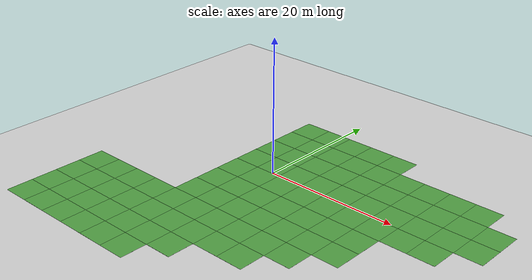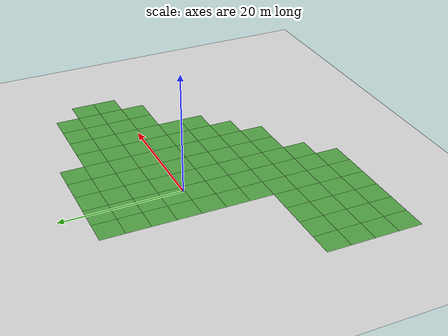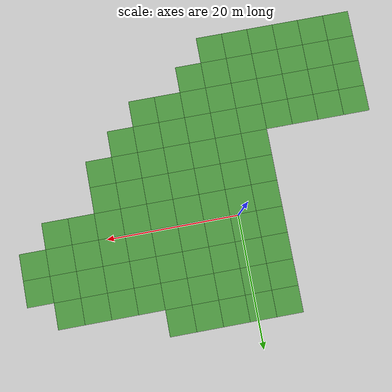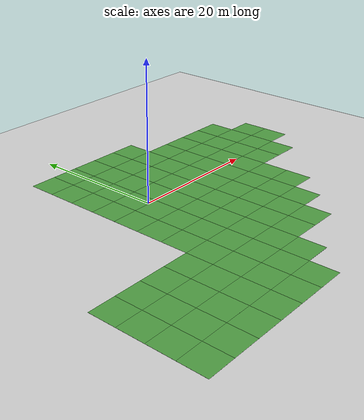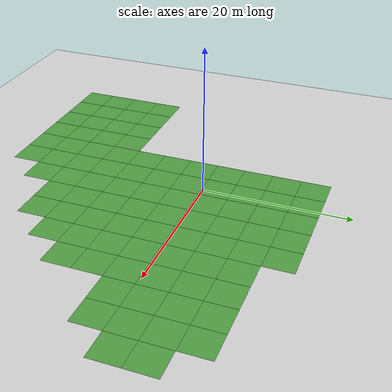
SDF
<sdf version="1.7">
 <world name="default">
  <model name="ground_plane">
   <static>1</static>
   <link name="link">
    <collision name="collision">
     <laser_retro>100</laser_retro>
     <geometry><plane><normal>0 0 1</normal><size>100 100</size></plane></geometry>
     <surface><friction><ode><mu>100</mu><mu2>50</mu2></ode></friction></surface>
    </collision>
    <visual name="visual">
     <laser_retro>100</laser_retro>
     <cast_shadows>0</cast_shadows>
     <geometry><plane><normal>0 0 1</normal><size>100 100</size></plane></geometry>
     <material>
      <script><uri>file://media/materials/scripts/gazebo.material</uri><name>Gazebo/Grey</name></script>
     </material>
    </visual>
   </link>
  </model>
  <model name="grass_plane">
   <static>1</static>
   <link name="link">
    <collision name="collision">
     <geometry><plane><normal>0 0 1</normal><size>100 100</size></plane></geometry>
     <surface><friction><ode><mu>0.5</mu><mu2>0.5</mu2></ode></friction></surface>
    </collision>
    <visual name="visual_0">
     <pose>-8 -8 0 0 -0 0</pose>
     <cast_shadows>0</cast_shadows>
     <geometry><plane><normal>0 0 1</normal><size>4 4</size></plane></geometry>
     <material>
      <script>
       <uri>model://grass_plane/materials/scripts</uri>
       <uri>model://grass_plane/materials/textures</uri>
       <name>vrc/grass</name>
      </script>
     </material>
    </visual>
    <visual name="visual_1">
     <pose>-4 -8 0 0 -0 0</pose>
     <cast_shadows>0</cast_shadows>
     <geometry><plane><normal>0 0 1</normal><size>4 4</size></plane></geometry>
     <material>
      <script>
       <uri>model://grass_plane/materials/scripts</uri>
       <uri>model://grass_plane/materials/textures</uri>
       <name>vrc/grass</name>
      </script>
     </material>
    </visual>
    <visual name="visual_2">
     <pose>0 -8 0 0 -0 0</pose>
     <cast_shadows>0</cast_shadows>
     <geometry><plane><normal>0 0 1</normal><size>4 4</size></plane></geometry>
     <material>
      <script>
       <uri>model://grass_plane/materials/scripts</uri>
       <uri>model://grass_plane/materials/textures</uri>
       <name>vrc/grass</name>
      </script>
     </material>
    </visual>
    <visual name="visual_3">
     <pose>4 -8 0 0 -0 0</pose>
     <cast_shadows>0</cast_shadows>
     <geometry><plane><normal>0 0 1</normal><size>4 4</size></plane></geometry>
     <material>
      <script>
       <uri>model://grass_plane/materials/scripts</uri>
       <uri>model://grass_plane/materials/textures</uri>
       <name>vrc/grass</name>
      </script>
     </material>
    </visual>
    <visual name="visual_4">
     <pose>8 -8 0 0 -0 0</pose>
     <cast_shadows>0</cast_shadows>
     <geometry><plane><normal>0 0 1</normal><size>4 4</size></plane></geometry>
     <material>
      <script>
       <uri>model://grass_plane/materials/scripts</uri>
       <uri>model://grass_plane/materials/textures</uri>
       <name>vrc/grass</name>
      </script>
     </material>
    </visual>
    <visual name="visual_5">
     <pose>12 -8 0 0 -0 0</pose>
     <cast_shadows>0</cast_shadows>
     <geometry><plane><normal>0 0 1</normal><size>4 4</size></plane></geometry>
     <material>
      <script>
       <uri>model://grass_plane/materials/scripts</uri>
       <uri>model://grass_plane/materials/textures</uri>
       <name>vrc/grass</name>
      </script>
     </material>
    </visual>
    <visual name="visual_6">
     <pose>-8 -4 0 0 -0 0</pose>
     <cast_shadows>0</cast_shadows>
     <geometry><plane><normal>0 0 1</normal><size>4 4</size></plane></geometry>
     <material>
      <script>
       <uri>model://grass_plane/materials/scripts</uri>
       <uri>model://grass_plane/materials/textures</uri>
       <name>vrc/grass</name>
      </script>
     </material>
    </visual>
    <visual name="visual_7">
     <pose>-4 -4 0 0 -0 0</pose>
     <cast_shadows>0</cast_shadows>
     <geometry><plane><normal>0 0 1</normal><size>4 4</size></plane></geometry>
     <material>
      <script>
       <uri>model://grass_plane/materials/scripts</uri>
       <uri>model://grass_plane/materials/textures</uri>
       <name>vrc/grass</name>
      </script>
     </material>
    </visual>
    <visual name="visual_8">
     <pose>0 -4 0 0 -0 0</pose>
     <cast_shadows>0</cast_shadows>
     <geometry><plane><normal>0 0 1</normal><size>4 4</size></plane></geometry>
     <material>
      <script>
       <uri>model://grass_plane/materials/scripts</uri>
       <uri>model://grass_plane/materials/textures</uri>
       <name>vrc/grass</name>
      </script>
     </material>
    </visual>
    <visual name="visual_9">
     <pose>4 -4 0 0 -0 0</pose>
     <cast_shadows>0</cast_shadows>
     <geometry><plane><normal>0 0 1</normal><size>4 4</size></plane></geometry>
     <material>
      <script>
       <uri>model://grass_plane/materials/scripts</uri>
       <uri>model://grass_plane/materials/textures</uri>
       <name>vrc/grass</name>
      </script>
     </material>
    </visual>
    <visual name="visual_10">
     <pose>8 -4 0 0 -0 0</pose>
     <cast_shadows>0</cast_shadows>
     <geometry><plane><normal>0 0 1</normal><size>4 4</size></plane></geometry>
     <material>
      <script>
       <uri>model://grass_plane/materials/scripts</uri>
       <uri>model://grass_plane/materials/textures</uri>
       <name>vrc/grass</name>
      </script>
     </material>
    </visual>
    <visual name="visual_11">
     <pose>12 -4 0 0 -0 0</pose>
     <cast_shadows>0</cast_shadows>
     <geometry><plane><normal>0 0 1</normal><size>4 4</size></plane></geometry>
     <material>
      <script>
       <uri>model://grass_plane/materials/scripts</uri>
       <uri>model://grass_plane/materials/textures</uri>
       <name>vrc/grass</name>
      </script>
     </material>
    </visual>
    <visual name="visual_12">
     <pose>16 -4 0 0 -0 0</pose>
     <cast_shadows>0</cast_shadows>
     <geometry><plane><normal>0 0 1</normal><size>4 4</size></plane></geometry>
     <material>
      <script>
       <uri>model://grass_plane/materials/scripts</uri>
       <uri>model://grass_plane/materials/textures</uri>
       <name>vrc/grass</name>
      </script>
     </material>
    </visual>
    <visual name="visual_13">
     <pose>-8 0 0 0 -0 0</pose>
     <cast_shadows>0</cast_shadows>
     <geometry><plane><normal>0 0 1</normal><size>4 4</size></plane></geometry>
     <material>
      <script>
       <uri>model://grass_plane/materials/scripts</uri>
       <uri>model://grass_plane/materials/textures</uri>
       <name>vrc/grass</name>
      </script>
     </material>
    </visual>
    <visual name="visual_14">
     <pose>-4 0 0 0 -0 0</pose>
     <cast_shadows>0</cast_shadows>
     <geometry><plane><normal>0 0 1</normal><size>4 4</size></plane></geometry>
     <material>
      <script>
       <uri>model://grass_plane/materials/scripts</uri>
       <uri>model://grass_plane/materials/textures</uri>
       <name>vrc/grass</name>
      </script>
     </material>
    </visual>
    <visual name="visual_15">
     <cast_shadows>0</cast_shadows>
     <geometry><plane><normal>0 0 1</normal><size>4 4</size></plane></geometry>
     <material>
      <script>
       <uri>model://grass_plane/materials/scripts</uri>
       <uri>model://grass_plane/materials/textures</uri>
       <name>vrc/grass</name>
      </script>
     </material>
    </visual>
    <visual name="visual_16">
     <pose>4 0 0 0 -0 0</pose>
     <cast_shadows>0</cast_shadows>
     <geometry><plane><normal>0 0 1</normal><size>4 4</size></plane></geometry>
     <material>
      <script>
       <uri>model://grass_plane/materials/scripts</uri>
       <uri>model://grass_plane/materials/textures</uri>
       <name>vrc/grass</name>
      </script>
     </material>
    </visual>
    <visual name="visual_17">
     <pose>8 0 0 0 -0 0</pose>
     <cast_shadows>0</cast_shadows>
     <geometry><plane><normal>0 0 1</normal><size>4 4</size></plane></geometry>
     <material>
      <script>
       <uri>model://grass_plane/materials/scripts</uri>
       <uri>model://grass_plane/materials/textures</uri>
       <name>vrc/grass</name>
      </script>
     </material>
    </visual>
    <visual name="visual_18">
     <pose>12 0 0 0 -0 0</pose>
     <cast_shadows>0</cast_shadows>
     <geometry><plane><normal>0 0 1</normal><size>4 4</size></plane></geometry>
     <material>
      <script>
       <uri>model://grass_plane/materials/scripts</uri>
       <uri>model://grass_plane/materials/textures</uri>
       <name>vrc/grass</name>
      </script>
     </material>
    </visual>
    <visual name="visual_19">
     <pose>16 0 0 0 -0 0</pose>
     <cast_shadows>0</cast_shadows>
     <geometry><plane><normal>0 0 1</normal><size>4 4</size></plane></geometry>
     <material>
      <script>
       <uri>model://grass_plane/materials/scripts</uri>
       <uri>model://grass_plane/materials/textures</uri>
       <name>vrc/grass</name>
      </script>
     </material>
    </visual>
    <visual name="visual_20">
     <pose>20 0 0 0 -0 0</pose>
     <cast_shadows>0</cast_shadows>
     <geometry><plane><normal>0 0 1</normal><size>4 4</size></plane></geometry>
     <material>
      <script>
       <uri>model://grass_plane/materials/scripts</uri>
       <uri>model://grass_plane/materials/textures</uri>
       <name>vrc/grass</name>
      </script>
     </material>
    </visual>
    <visual name="visual_21">
     <pose>24 0 0 0 -0 0</pose>
     <cast_shadows>0</cast_shadows>
     <geometry><plane><normal>0 0 1</normal><size>4 4</size></plane></geometry>
     <material>
      <script>
       <uri>model://grass_plane/materials/scripts</uri>
       <uri>model://grass_plane/materials/textures</uri>
       <name>vrc/grass</name>
      </script>
     </material>
    </visual>
    <visual name="visual_22">
     <pose>-8 4 0 0 -0 0</pose>
     <cast_shadows>0</cast_shadows>
     <geometry><plane><normal>0 0 1</normal><size>4 4</size></plane></geometry>
     <material>
      <script>
       <uri>model://grass_plane/materials/scripts</uri>
       <uri>model://grass_plane/materials/textures</uri>
       <name>vrc/grass</name>
      </script>
     </material>
    </visual>
    <visual name="visual_23">
     <pose>-4 4 0 0 -0 0</pose>
     <cast_shadows>0</cast_shadows>
     <geometry><plane><normal>0 0 1</normal><size>4 4</size></plane></geometry>
     <material>
      <script>
       <uri>model://grass_plane/materials/scripts</uri>
       <uri>model://grass_plane/materials/textures</uri>
       <name>vrc/grass</name>
      </script>
     </material>
    </visual>
    <visual name="visual_24">
     <pose>0 4 0 0 -0 0</pose>
     <cast_shadows>0</cast_shadows>
     <geometry><plane><normal>0 0 1</normal><size>4 4</size></plane></geometry>
     <material>
      <script>
       <uri>model://grass_plane/materials/scripts</uri>
       <uri>model://grass_plane/materials/textures</uri>
       <name>vrc/grass</name>
      </script>
     </material>
    </visual>
    <visual name="visual_25">
     <pose>4 4 0 0 -0 0</pose>
     <cast_shadows>0</cast_shadows>
     <geometry><plane><normal>0 0 1</normal><size>4 4</size></plane></geometry>
     <material>
      <script>
       <uri>model://grass_plane/materials/scripts</uri>
       <uri>model://grass_plane/materials/textures</uri>
       <name>vrc/grass</name>
      </script>
     </material>
    </visual>
    <visual name="visual_26">
     <pose>8 4 0 0 -0 0</pose>
     <cast_shadows>0</cast_shadows>
     <geometry><plane><normal>0 0 1</normal><size>4 4</size></plane></geometry>
     <material>
      <script>
       <uri>model://grass_plane/materials/scripts</uri>
       <uri>model://grass_plane/materials/textures</uri>
       <name>vrc/grass</name>
      </script>
     </material>
    </visual>
    <visual name="visual_27">
     <pose>12 4 0 0 -0 0</pose>
     <cast_shadows>0</cast_shadows>
     <geometry><plane><normal>0 0 1</normal><size>4 4</size></plane></geometry>
     <material>
      <script>
       <uri>model://grass_plane/materials/scripts</uri>
       <uri>model://grass_plane/materials/textures</uri>
       <name>vrc/grass</name>
      </script>
     </material>
    </visual>
    <visual name="visual_28">
     <pose>16 4 0 0 -0 0</pose>
     <cast_shadows>0</cast_shadows>
     <geometry><plane><normal>0 0 1</normal><size>4 4</size></plane></geometry>
     <material>
      <script>
       <uri>model://grass_plane/materials/scripts</uri>
       <uri>model://grass_plane/materials/textures</uri>
       <name>vrc/grass</name>
      </script>
     </material>
    </visual>
    <visual name="visual_29">
     <pose>20 4 0 0 -0 0</pose>
     <cast_shadows>0</cast_shadows>
     <geometry><plane><normal>0 0 1</normal><size>4 4</size></plane></geometry>
     <material>
      <script>
       <uri>model://grass_plane/materials/scripts</uri>
       <uri>model://grass_plane/materials/textures</uri>
       <name>vrc/grass</name>
      </script>
     </material>
    </visual>
    <visual name="visual_30">
     <pose>24 4 0 0 -0 0</pose>
     <cast_shadows>0</cast_shadows>
     <geometry><plane><normal>0 0 1</normal><size>4 4</size></plane></geometry>
     <material>
      <script>
       <uri>model://grass_plane/materials/scripts</uri>
       <uri>model://grass_plane/materials/textures</uri>
       <name>vrc/grass</name>
      </script>
     </material>
    </visual>
    <visual name="visual_31">
     <pose>28 4 0 0 -0 0</pose>
     <cast_shadows>0</cast_shadows>
     <geometry><plane><normal>0 0 1</normal><size>4 4</size></plane></geometry>
     <material>
      <script>
       <uri>model://grass_plane/materials/scripts</uri>
       <uri>model://grass_plane/materials/textures</uri>
       <name>vrc/grass</name>
      </script>
     </material>
    </visual>
    <visual name="visual_32">
     <pose>8 8 0 0 -0 0</pose>
     <cast_shadows>0</cast_shadows>
     <geometry><plane><normal>0 0 1</normal><size>4 4</size></plane></geometry>
     <material>
      <script>
       <uri>model://grass_plane/materials/scripts</uri>
       <uri>model://grass_plane/materials/textures</uri>
       <name>vrc/grass</name>
      </script>
     </material>
    </visual>
    <visual name="visual_33">
     <pose>12 8 0 0 -0 0</pose>
     <cast_shadows>0</cast_shadows>
     <geometry><plane><normal>0 0 1</normal><size>4 4</size></plane></geometry>
     <material>
      <script>
       <uri>model://grass_plane/materials/scripts</uri>
       <uri>model://grass_plane/materials/textures</uri>
       <name>vrc/grass</name>
      </script>
     </material>
    </visual>
    <visual name="visual_34">
     <pose>16 8 0 0 -0 0</pose>
     <cast_shadows>0</cast_shadows>
     <geometry><plane><normal>0 0 1</normal><size>4 4</size></plane></geometry>
     <material>
      <script>
       <uri>model://grass_plane/materials/scripts</uri>
       <uri>model://grass_plane/materials/textures</uri>
       <name>vrc/grass</name>
      </script>
     </material>
    </visual>
    <visual name="visual_35">
     <pose>20 8 0 0 -0 0</pose>
     <cast_shadows>0</cast_shadows>
     <geometry><plane><normal>0 0 1</normal><size>4 4</size></plane></geometry>
     <material>
      <script>
       <uri>model://grass_plane/materials/scripts</uri>
       <uri>model://grass_plane/materials/textures</uri>
       <name>vrc/grass</name>
      </script>
     </material>
    </visual>
    <visual name="visual_36">
     <pose>24 8 0 0 -0 0</pose>
     <cast_shadows>0</cast_shadows>
     <geometry><plane><normal>0 0 1</normal><size>4 4</size></plane></geometry>
     <material>
      <script>
       <uri>model://grass_plane/materials/scripts</uri>
       <uri>model://grass_plane/materials/textures</uri>
       <name>vrc/grass</name>
      </script>
     </material>
    </visual>
    <visual name="visual_37">
     <pose>28 8 0 0 -0 0</pose>
     <cast_shadows>0</cast_shadows>
     <geometry><plane><normal>0 0 1</normal><size>4 4</size></plane></geometry>
     <material>
      <script>
       <uri>model://grass_plane/materials/scripts</uri>
       <uri>model://grass_plane/materials/textures</uri>
       <name>vrc/grass</name>
      </script>
     </material>
    </visual>
    <visual name="visual_38">
     <pose>32 8 0 0 -0 0</pose>
     <cast_shadows>0</cast_shadows>
     <geometry><plane><normal>0 0 1</normal><size>4 4</size></plane></geometry>
     <material>
      <script>
       <uri>model://grass_plane/materials/scripts</uri>
       <uri>model://grass_plane/materials/textures</uri>
       <name>vrc/grass</name>
      </script>
     </material>
    </visual>
    <visual name="visual_39">
     <pose>8 12 0 0 -0 0</pose>
     <cast_shadows>0</cast_shadows>
     <geometry><plane><normal>0 0 1</normal><size>4 4</size></plane></geometry>
     <material>
      <script>
       <uri>model://grass_plane/materials/scripts</uri>
       <uri>model://grass_plane/materials/textures</uri>
       <name>vrc/grass</name>
      </script>
     </material>
    </visual>
    <visual name="visual_40">
     <pose>12 12 0 0 -0 0</pose>
     <cast_shadows>0</cast_shadows>
     <geometry><plane><normal>0 0 1</normal><size>4 4</size></plane></geometry>
     <material>
      <script>
       <uri>model://grass_plane/materials/scripts</uri>
       <uri>model://grass_plane/materials/textures</uri>
       <name>vrc/grass</name>
      </script>
     </material>
    </visual>
    <visual name="visual_41">
     <pose>16 12 0 0 -0 0</pose>
     <cast_shadows>0</cast_shadows>
     <geometry><plane><normal>0 0 1</normal><size>4 4</size></plane></geometry>
     <material>
      <script>
       <uri>model://grass_plane/materials/scripts</uri>
       <uri>model://grass_plane/materials/textures</uri>
       <name>vrc/grass</name>
      </script>
     </material>
    </visual>
    <visual name="visual_42">
     <pose>20 12 0 0 -0 0</pose>
     <cast_shadows>0</cast_shadows>
     <geometry><plane><normal>0 0 1</normal><size>4 4</size></plane></geometry>
     <material>
      <script>
       <uri>model://grass_plane/materials/scripts</uri>
       <uri>model://grass_plane/materials/textures</uri>
       <name>vrc/grass</name>
      </script>
     </material>
    </visual>
    <visual name="visual_43">
     <pose>24 12 0 0 -0 0</pose>
     <cast_shadows>0</cast_shadows>
     <geometry><plane><normal>0 0 1</normal><size>4 4</size></plane></geometry>
     <material>
      <script>
       <uri>model://grass_plane/materials/scripts</uri>
       <uri>model://grass_plane/materials/textures</uri>
       <name>vrc/grass</name>
      </script>
     </material>
    </visual>
    <visual name="visual_44">
     <pose>28 12 0 0 -0 0</pose>
     <cast_shadows>0</cast_shadows>
     <geometry><plane><normal>0 0 1</normal><size>4 4</size></plane></geometry>
     <material>
      <script>
       <uri>model://grass_plane/materials/scripts</uri>
       <uri>model://grass_plane/materials/textures</uri>
       <name>vrc/grass</name>
      </script>
     </material>
    </visual>
    <visual name="visual_45">
     <pose>32 12 0 0 -0 0</pose>
     <cast_shadows>0</cast_shadows>
     <geometry><plane><normal>0 0 1</normal><size>4 4</size></plane></geometry>
     <material>
      <script>
       <uri>model://grass_plane/materials/scripts</uri>
       <uri>model://grass_plane/materials/textures</uri>
       <name>vrc/grass</name>
      </script>
     </material>
    </visual>
    <visual name="visual_46">
     <pose>8 16 0 0 -0 0</pose>
     <cast_shadows>0</cast_shadows>
     <geometry><plane><normal>0 0 1</normal><size>4 4</size></plane></geometry>
     <material>
      <script>
       <uri>model://grass_plane/materials/scripts</uri>
       <uri>model://grass_plane/materials/textures</uri>
       <name>vrc/grass</name>
      </script>
     </material>
    </visual>
    <visual name="visual_47">
     <pose>12 16 0 0 -0 0</pose>
     <cast_shadows>0</cast_shadows>
     <geometry><plane><normal>0 0 1</normal><size>4 4</size></plane></geometry>
     <material>
      <script>
       <uri>model://grass_plane/materials/scripts</uri>
       <uri>model://grass_plane/materials/textures</uri>
       <name>vrc/grass</name>
      </script>
     </material>
    </visual>
    <visual name="visual_48">
     <pose>16 16 0 0 -0 0</pose>
     <cast_shadows>0</cast_shadows>
     <geometry><plane><normal>0 0 1</normal><size>4 4</size></plane></geometry>
     <material>
      <script>
       <uri>model://grass_plane/materials/scripts</uri>
       <uri>model://grass_plane/materials/textures</uri>
       <name>vrc/grass</name>
      </script>
     </material>
    </visual>
    <visual name="visual_49">
     <pose>20 16 0 0 -0 0</pose>
     <cast_shadows>0</cast_shadows>
     <geometry><plane><normal>0 0 1</normal><size>4 4</size></plane></geometry>
     <material>
      <script>
       <uri>model://grass_plane/materials/scripts</uri>
       <uri>model://grass_plane/materials/textures</uri>
       <name>vrc/grass</name>
      </script>
     </material>
    </visual>
    <visual name="visual_50">
     <pose>24 16 0 0 -0 0</pose>
     <cast_shadows>0</cast_shadows>
     <geometry><plane><normal>0 0 1</normal><size>4 4</size></plane></geometry>
     <material>
      <script>
       <uri>model://grass_plane/materials/scripts</uri>
       <uri>model://grass_plane/materials/textures</uri>
       <name>vrc/grass</name>
      </script>
     </material>
    </visual>
    <visual name="visual_51">
     <pose>28 16 0 0 -0 0</pose>
     <cast_shadows>0</cast_shadows>
     <geometry><plane><normal>0 0 1</normal><size>4 4</size></plane></geometry>
     <material>
      <script>
       <uri>model://grass_plane/materials/scripts</uri>
       <uri>model://grass_plane/materials/textures</uri>
       <name>vrc/grass</name>
      </script>
     </material>
    </visual>
    <visual name="visual_52">
     <pose>32 16 0 0 -0 0</pose>
     <cast_shadows>0</cast_shadows>
     <geometry><plane><normal>0 0 1</normal><size>4 4</size></plane></geometry>
     <material>
      <script>
       <uri>model://grass_plane/materials/scripts</uri>
       <uri>model://grass_plane/materials/textures</uri>
       <name>vrc/grass</name>
      </script>
     </material>
    </visual>
    <visual name="visual_53">
     <pose>36 16 0 0 -0 0</pose>
     <cast_shadows>0</cast_shadows>
     <geometry><plane><normal>0 0 1</normal><size>4 4</size></plane></geometry>
     <material>
      <script>
       <uri>model://grass_plane/materials/scripts</uri>
       <uri>model://grass_plane/materials/textures</uri>
       <name>vrc/grass</name>
      </script>
     </material>
    </visual>
    <visual name="visual_54">
     <pose>40 16 0 0 -0 0</pose>
     <cast_shadows>0</cast_shadows>
     <geometry><plane><normal>0 0 1</normal><size>4 4</size></plane></geometry>
     <material>
      <script>
       <uri>model://grass_plane/materials/scripts</uri>
       <uri>model://grass_plane/materials/textures</uri>
       <name>vrc/grass</name>
      </script>
     </material>
    </visual>
    <visual name="visual_55">
     <pose>8 20 0 0 -0 0</pose>
     <cast_shadows>0</cast_shadows>
     <geometry><plane><normal>0 0 1</normal><size>4 4</size></plane></geometry>
     <material>
      <script>
       <uri>model://grass_plane/materials/scripts</uri>
       <uri>model://grass_plane/materials/textures</uri>
       <name>vrc/grass</name>
      </script>
     </material>
    </visual>
    <visual name="visual_56">
     <pose>12 20 0 0 -0 0</pose>
     <cast_shadows>0</cast_shadows>
     <geometry><plane><normal>0 0 1</normal><size>4 4</size></plane></geometry>
     <material>
      <script>
       <uri>model://grass_plane/materials/scripts</uri>
       <uri>model://grass_plane/materials/textures</uri>
       <name>vrc/grass</name>
      </script>
     </material>
    </visual>
    <visual name="visual_57">
     <pose>16 20 0 0 -0 0</pose>
     <cast_shadows>0</cast_shadows>
     <geometry><plane><normal>0 0 1</normal><size>4 4</size></plane></geometry>
     <material>
      <script>
       <uri>model://grass_plane/materials/scripts</uri>
       <uri>model://grass_plane/materials/textures</uri>
       <name>vrc/grass</name>
      </script>
     </material>
    </visual>
    <visual name="visual_58">
     <pose>20 20 0 0 -0 0</pose>
     <cast_shadows>0</cast_shadows>
     <geometry><plane><normal>0 0 1</normal><size>4 4</size></plane></geometry>
     <material>
      <script>
       <uri>model://grass_plane/materials/scripts</uri>
       <uri>model://grass_plane/materials/textures</uri>
       <name>vrc/grass</name>
      </script>
     </material>
    </visual>
    <visual name="visual_59">
     <pose>24 20 0 0 -0 0</pose>
     <cast_shadows>0</cast_shadows>
     <geometry><plane><normal>0 0 1</normal><size>4 4</size></plane></geometry>
     <material>
      <script>
       <uri>model://grass_plane/materials/scripts</uri>
       <uri>model://grass_plane/materials/textures</uri>
       <name>vrc/grass</name>
      </script>
     </material>
    </visual>
    <visual name="visual_60">
     <pose>28 20 0 0 -0 0</pose>
     <cast_shadows>0</cast_shadows>
     <geometry><plane><normal>0 0 1</normal><size>4 4</size></plane></geometry>
     <material>
      <script>
       <uri>model://grass_plane/materials/scripts</uri>
       <uri>model://grass_plane/materials/textures</uri>
       <name>vrc/grass</name>
      </script>
     </material>
    </visual>
    <visual name="visual_61">
     <pose>32 20 0 0 -0 0</pose>
     <cast_shadows>0</cast_shadows>
     <geometry><plane><normal>0 0 1</normal><size>4 4</size></plane></geometry>
     <material>
      <script>
       <uri>model://grass_plane/materials/scripts</uri>
       <uri>model://grass_plane/materials/textures</uri>
       <name>vrc/grass</name>
      </script>
     </material>
    </visual>
    <visual name="visual_62">
     <pose>36 20 0 0 -0 0</pose>
     <cast_shadows>0</cast_shadows>
     <geometry><plane><normal>0 0 1</normal><size>4 4</size></plane></geometry>
     <material>
      <script>
       <uri>model://grass_plane/materials/scripts</uri>
       <uri>model://grass_plane/materials/textures</uri>
       <name>vrc/grass</name>
      </script>
     </material>
    </visual>
    <visual name="visual_63">
     <pose>40 20 0 0 -0 0</pose>
     <cast_shadows>0</cast_shadows>
     <geometry><plane><normal>0 0 1</normal><size>4 4</size></plane></geometry>
     <material>
      <script>
       <uri>model://grass_plane/materials/scripts</uri>
       <uri>model://grass_plane/materials/textures</uri>
       <name>vrc/grass</name>
      </script>
     </material>
    </visual>
    <visual name="visual_63a">
     <pose>44 20 0 0 -0 0</pose>
     <cast_shadows>0</cast_shadows>
     <geometry><plane><normal>0 0 1</normal><size>4 4</size></plane></geometry>
     <material>
      <script>
       <uri>model://grass_plane/materials/scripts</uri>
       <uri>model://grass_plane/materials/textures</uri>
       <name>vrc/grass</name>
      </script>
     </material>
    </visual>
    <visual name="visual_64">
     <pose>8 24 0 0 -0 0</pose>
     <cast_shadows>0</cast_shadows>
     <geometry><plane><normal>0 0 1</normal><size>4 4</size></plane></geometry>
     <material>
      <script>
       <uri>model://grass_plane/materials/scripts</uri>
       <uri>model://grass_plane/materials/textures</uri>
       <name>vrc/grass</name>
      </script>
     </material>
    </visual>
    <visual name="visual_65">
     <pose>12 24 0 0 -0 0</pose>
     <cast_shadows>0</cast_shadows>
     <geometry><plane><normal>0 0 1</normal><size>4 4</size></plane></geometry>
     <material>
      <script>
       <uri>model://grass_plane/materials/scripts</uri>
       <uri>model://grass_plane/materials/textures</uri>
       <name>vrc/grass</name>
      </script>
     </material>
    </visual>
    <visual name="visual_66">
     <pose>16 24 0 0 -0 0</pose>
     <cast_shadows>0</cast_shadows>
     <geometry><plane><normal>0 0 1</normal><size>4 4</size></plane></geometry>
     <material>
      <script>
       <uri>model://grass_plane/materials/scripts</uri>
       <uri>model://grass_plane/materials/textures</uri>
       <name>vrc/grass</name>
      </script>
     </material>
    </visual>
    <visual name="visual_67">
     <pose>20 24 0 0 -0 0</pose>
     <cast_shadows>0</cast_shadows>
     <geometry><plane><normal>0 0 1</normal><size>4 4</size></plane></geometry>
     <material>
      <script>
       <uri>model://grass_plane/materials/scripts</uri>
       <uri>model://grass_plane/materials/textures</uri>
       <name>vrc/grass</name>
      </script>
     </material>
    </visual>
    <visual name="visual_68">
     <pose>24 24 0 0 -0 0</pose>
     <cast_shadows>0</cast_shadows>
     <geometry><plane><normal>0 0 1</normal><size>4 4</size></plane></geometry>
     <material>
      <script>
       <uri>model://grass_plane/materials/scripts</uri>
       <uri>model://grass_plane/materials/textures</uri>
       <name>vrc/grass</name>
      </script>
     </material>
    </visual>
    <visual name="visual_69">
     <pose>28 24 0 0 -0 0</pose>
     <cast_shadows>0</cast_shadows>
     <geometry><plane><normal>0 0 1</normal><size>4 4</size></plane></geometry>
     <material>
      <script>
       <uri>model://grass_plane/materials/scripts</uri>
       <uri>model://grass_plane/materials/textures</uri>
       <name>vrc/grass</name>
      </script>
     </material>
    </visual>
    <visual name="visual_70">
     <pose>32 24 0 0 -0 0</pose>
     <cast_shadows>0</cast_shadows>
     <geometry><plane><normal>0 0 1</normal><size>4 4</size></plane></geometry>
     <material>
      <script>
       <uri>model://grass_plane/materials/scripts</uri>
       <uri>model://grass_plane/materials/textures</uri>
       <name>vrc/grass</name>
      </script>
     </material>
    </visual>
    <visual name="visual_71">
     <pose>36 24 0 0 -0 0</pose>
     <cast_shadows>0</cast_shadows>
     <geometry><plane><normal>0 0 1</normal><size>4 4</size></plane></geometry>
     <material>
      <script>
       <uri>model://grass_plane/materials/scripts</uri>
       <uri>model://grass_plane/materials/textures</uri>
       <name>vrc/grass</name>
      </script>
     </material>
    </visual>
    <visual name="visual_72">
     <pose>40 24 0 0 -0 0</pose>
     <cast_shadows>0</cast_shadows>
     <geometry><plane><normal>0 0 1</normal><size>4 4</size></plane></geometry>
     <material>
      <script>
       <uri>model://grass_plane/materials/scripts</uri>
       <uri>model://grass_plane/materials/textures</uri>
       <name>vrc/grass</name>
      </script>
     </material>
    </visual>
    <visual name="visual_72a">
     <pose>44 24 0 0 -0 0</pose>
     <cast_shadows>0</cast_shadows>
     <geometry><plane><normal>0 0 1</normal><size>4 4</size></plane></geometry>
     <material>
      <script>
       <uri>model://grass_plane/materials/scripts</uri>
       <uri>model://grass_plane/materials/textures</uri>
       <name>vrc/grass</name>
      </script>
     </material>
    </visual>
    <visual name="visual_73">
     <pose>8 28 0 0 -0 0</pose>
     <cast_shadows>0</cast_shadows>
     <geometry><plane><normal>0 0 1</normal><size>4 4</size></plane></geometry>
     <material>
      <script>
       <uri>model://grass_plane/materials/scripts</uri>
       <uri>model://grass_plane/materials/textures</uri>
       <name>vrc/grass</name>
      </script>
     </material>
    </visual>
    <visual name="visual_74">
     <pose>12 28 0 0 -0 0</pose>
     <cast_shadows>0</cast_shadows>
     <geometry><plane><normal>0 0 1</normal><size>4 4</size></plane></geometry>
     <material>
      <script>
       <uri>model://grass_plane/materials/scripts</uri>
       <uri>model://grass_plane/materials/textures</uri>
       <name>vrc/grass</name>
      </script>
     </material>
    </visual>
    <visual name="visual_75">
     <pose>16 28 0 0 -0 0</pose>
     <cast_shadows>0</cast_shadows>
     <geometry><plane><normal>0 0 1</normal><size>4 4</size></plane></geometry>
     <material>
      <script>
       <uri>model://grass_plane/materials/scripts</uri>
       <uri>model://grass_plane/materials/textures</uri>
       <name>vrc/grass</name>
      </script>
     </material>
    </visual>
    <visual name="visual_76">
     <pose>20 28 0 0 -0 0</pose>
     <cast_shadows>0</cast_shadows>
     <geometry><plane><normal>0 0 1</normal><size>4 4</size></plane></geometry>
     <material>
      <script>
       <uri>model://grass_plane/materials/scripts</uri>
       <uri>model://grass_plane/materials/textures</uri>
       <name>vrc/grass</name>
      </script>
     </material>
    </visual>
    <visual name="visual_77">
     <pose>24 28 0 0 -0 0</pose>
     <cast_shadows>0</cast_shadows>
     <geometry><plane><normal>0 0 1</normal><size>4 4</size></plane></geometry>
     <material>
      <script>
       <uri>model://grass_plane/materials/scripts</uri>
       <uri>model://grass_plane/materials/textures</uri>
       <name>vrc/grass</name>
      </script>
     </material>
    </visual>
    <visual name="visual_78">
     <pose>28 28 0 0 -0 0</pose>
     <cast_shadows>0</cast_shadows>
     <geometry><plane><normal>0 0 1</normal><size>4 4</size></plane></geometry>
     <material>
      <script>
       <uri>model://grass_plane/materials/scripts</uri>
       <uri>model://grass_plane/materials/textures</uri>
       <name>vrc/grass</name>
      </script>
     </material>
    </visual>
    <visual name="visual_79">
     <pose>32 28 0 0 -0 0</pose>
     <cast_shadows>0</cast_shadows>
     <geometry><plane><normal>0 0 1</normal><size>4 4</size></plane></geometry>
     <material>
      <script>
       <uri>model://grass_plane/materials/scripts</uri>
       <uri>model://grass_plane/materials/textures</uri>
       <name>vrc/grass</name>
      </script>
     </material>
    </visual>
    <visual name="visual_80">
     <pose>36 28 0 0 -0 0</pose>
     <cast_shadows>0</cast_shadows>
     <geometry><plane><normal>0 0 1</normal><size>4 4</size></plane></geometry>
     <material>
      <script>
       <uri>model://grass_plane/materials/scripts</uri>
       <uri>model://grass_plane/materials/textures</uri>
       <name>vrc/grass</name>
      </script>
     </material>
    </visual>
    <visual name="visual_81">
     <pose>40 28 0 0 -0 0</pose>
     <cast_shadows>0</cast_shadows>
     <geometry><plane><normal>0 0 1</normal><size>4 4</size></plane></geometry>
     <material>
      <script>
       <uri>model://grass_plane/materials/scripts</uri>
       <uri>model://grass_plane/materials/textures</uri>
       <name>vrc/grass</name>
      </script>
     </material>
    </visual>
    <visual name="visual_82">
     <pose>8 32 0 0 -0 0</pose>
     <cast_shadows>0</cast_shadows>
     <geometry><plane><normal>0 0 1</normal><size>4 4</size></plane></geometry>
     <material>
      <script>
       <uri>model://grass_plane/materials/scripts</uri>
       <uri>model://grass_plane/materials/textures</uri>
       <name>vrc/grass</name>
      </script>
     </material>
    </visual>
    <visual name="visual_83">
     <pose>12 32 0 0 -0 0</pose>
     <cast_shadows>0</cast_shadows>
     <geometry><plane><normal>0 0 1</normal><size>4 4</size></plane></geometry>
     <material>
      <script>
       <uri>model://grass_plane/materials/scripts</uri>
       <uri>model://grass_plane/materials/textures</uri>
       <name>vrc/grass</name>
      </script>
     </material>
    </visual>
    <visual name="visual_84">
     <pose>16 32 0 0 -0 0</pose>
     <cast_shadows>0</cast_shadows>
     <geometry><plane><normal>0 0 1</normal><size>4 4</size></plane></geometry>
     <material>
      <script>
       <uri>model://grass_plane/materials/scripts</uri>
       <uri>model://grass_plane/materials/textures</uri>
       <name>vrc/grass</name>
      </script>
     </material>
    </visual>
    <visual name="visual_85">
     <pose>20 32 0 0 -0 0</pose>
     <cast_shadows>0</cast_shadows>
     <geometry><plane><normal>0 0 1</normal><size>4 4</size></plane></geometry>
     <material>
      <script>
       <uri>model://grass_plane/materials/scripts</uri>
       <uri>model://grass_plane/materials/textures</uri>
       <name>vrc/grass</name>
      </script>
     </material>
    </visual>
    <visual name="visual_86">
     <pose>24 32 0 0 -0 0</pose>
     <cast_shadows>0</cast_shadows>
     <geometry><plane><normal>0 0 1</normal><size>4 4</size></plane></geometry>
     <material>
      <script>
       <uri>model://grass_plane/materials/scripts</uri>
       <uri>model://grass_plane/materials/textures</uri>
       <name>vrc/grass</name>
      </script>
     </material>
    </visual>
   </link>
   <pose>-12.7617 -18.2154 0.1 0 -0 0</pose>
  </model>
 </world>
</sdf>
